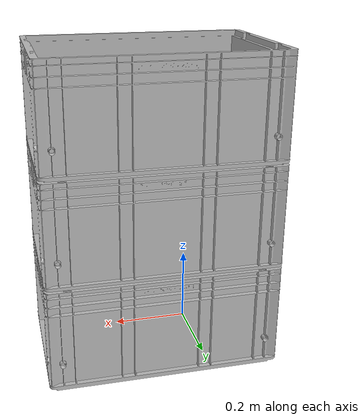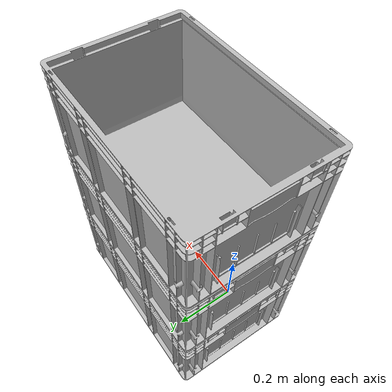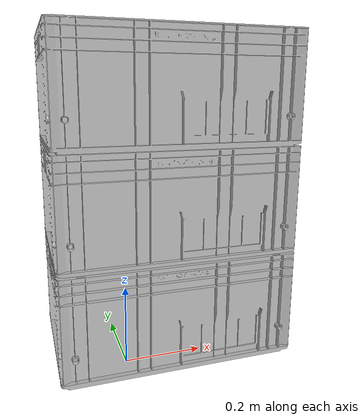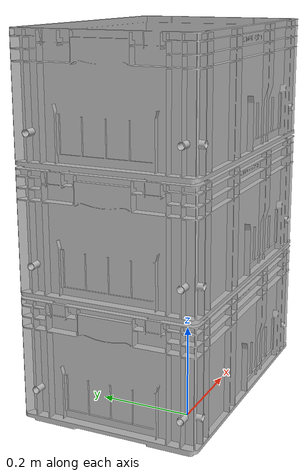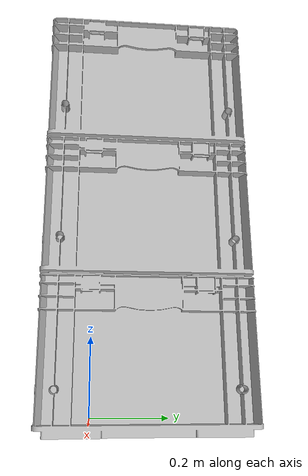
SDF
<?xml version="1.0" ?>
<sdf version="1.5">
  <model name="klt_stack_3">
    <include>
      <name>klt_0</name>
      <uri>model://klt</uri>
      <pose>0 0 0 0 0 0</pose>
    </include>
    <include>
      <name>klt_1</name>
      <uri>model://klt</uri>
      <pose>0 0 0.27 0 0 0</pose>
    </include>
    <include>
      <name>klt_2</name>
      <uri>model://klt</uri>
      <pose>0 0 0.54 0 0 0</pose>
    </include>
    <joint name="link0_link1" type="fixed">
      <child>klt_0::link</child>
      <parent>klt_1::link</parent>
      <axis>
        <xyz>0 0 1</xyz>
        <use_parent_model_frame>true</use_parent_model_frame>
      </axis>
    </joint>
    <joint name="link1_link2" type="fixed">
      <parent>klt_1::link</parent>
      <child>klt_2::link</child>
      <axis>
        <xyz>0 0 1</xyz>
        <use_parent_model_frame>true</use_parent_model_frame>
      </axis>
    </joint>
  </model>
</sdf>

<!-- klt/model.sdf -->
<sdf version="1.6">
  <model name="KLT">
    <link name="link">
      <pose>0 0 0 0 0 0</pose>
      <inertial>
        <mass>1.0</mass>
        <inertia>
          <ixx>0.60</ixx>
          <ixy>0</ixy>
          <ixz>0</ixz>
          <iyy>0.40</iyy>
          <iyz>0</iyz>
          <izz>0.28</izz>
        </inertia>
      </inertial>
      <collision name="collision">
        <pose>0 0 0 0 0 0</pose>
        <geometry>
          <mesh>
            <scale>0.001 0.001 0.001</scale>
            <uri>model://klt/meshes/klt.obj</uri>
          </mesh>
        </geometry>
      </collision>
      <visual name="visual">
        <geometry>
          <mesh>
            <scale>0.001 0.001 0.001</scale>
            <uri>model://klt/meshes/klt.obj</uri>
          </mesh>
        </geometry>
      </visual>
    </link>
  </model>
</sdf>
